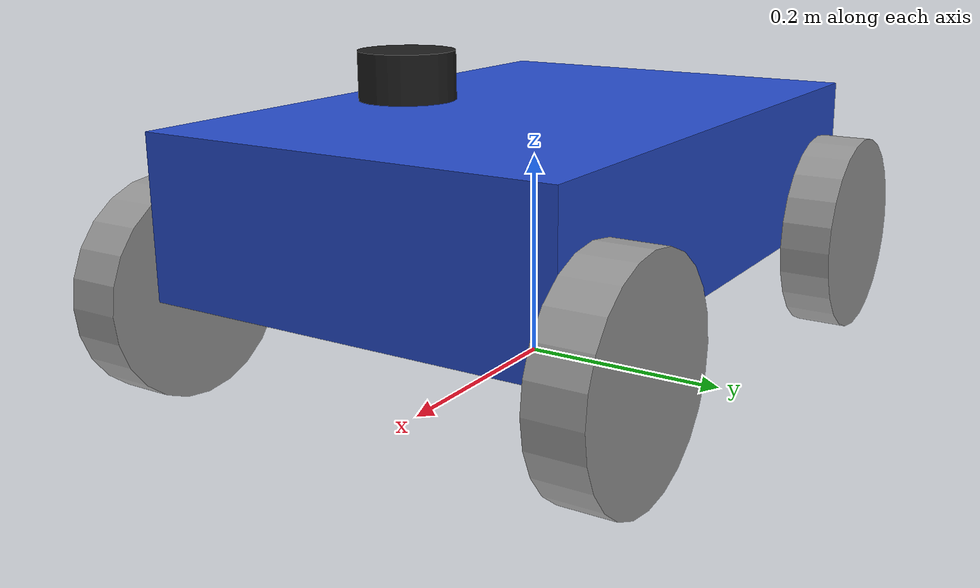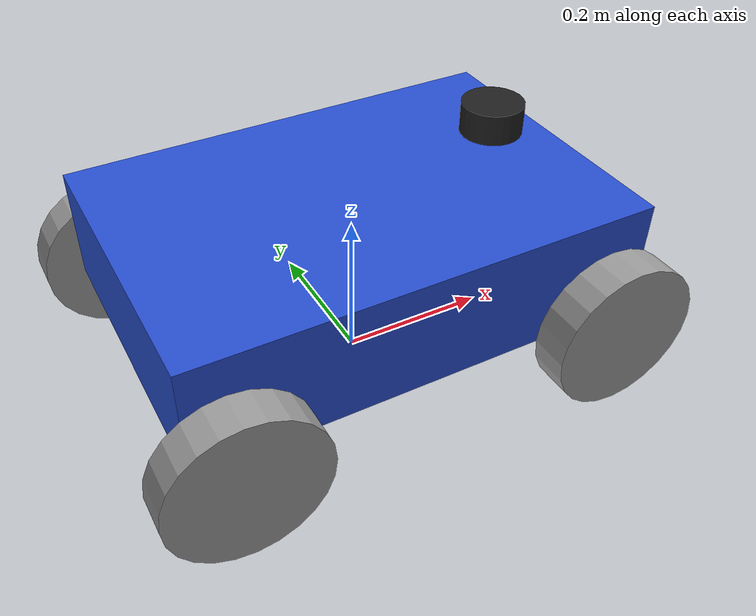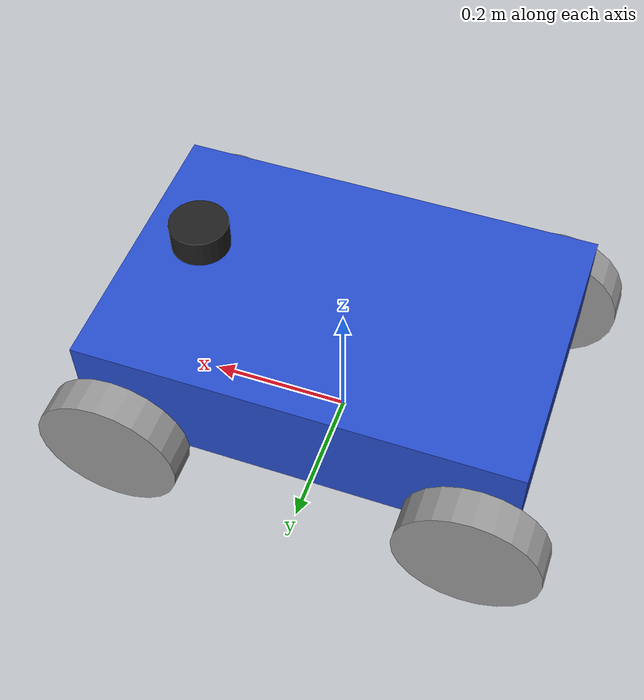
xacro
<?xml version="1.0"?>
<robot xmlns:xacro="http://www.ros.org/wiki/xacro">

    <xacro:property name="base_length" value="0.6" />
    <xacro:property name="base_width" value="0.4" />
    <xacro:property name="base_height" value="0.15" />
    <xacro:property name="wheel_radius" value="0.1" />
    <xacro:property name="wheel_length" value="0.05" />
    <xacro:property name="wheelbase" value="0.5" />
    <xacro:property name="track_width" value="0.4" />
    <xacro:property name="max_steer_angle" value="0.6" />
    <xacro:property name="wheel_separation" value="${track_width + wheel_length}" />
    <xacro:property name="max_wheel_angular_velocity" value="20.0" />

    <!-- Base footprint (ground projection) -->
    <link name="base_footprint" />

    <!-- Chassis -->
    <link name="base_link">
        <visual>
            <geometry>
                <box size="${base_length} ${base_width} ${base_height}" />
            </geometry>
            <origin xyz="0 0 ${base_height / 2.0}" rpy="0 0 0" />
            <material name="blue" />
        </visual>
        <collision>
            <geometry>
                <box size="${base_length} ${base_width - 0.15} ${base_height}" />
            </geometry>
            <origin xyz="0 0 ${base_height / 2.0}" rpy="0 0 0" />
        </collision>
        <xacro:box_inertia m="5.0" l="${2*base_length}" w="${2*base_width}" h="${2*base_height}"
                           xyz="0 0 ${base_height / 2.0}" rpy="0 0 0" />
    </link>

    <joint name="base_joint" type="fixed">
        <parent link="base_footprint" />
        <child link="base_link" />
        <origin xyz="0 0 ${wheel_radius}" rpy="0 0 0"/>
    </joint>

    <!-- ==================== REAR WHEELS (driven) ==================== -->

    <xacro:macro name="rear_wheel" params="prefix y_offset">
        <link name="rear_${prefix}_wheel_link">
            <visual>
                <geometry>
                    <cylinder radius="${wheel_radius}" length="${wheel_length}" />
                </geometry>
                <origin xyz="0 0 0" rpy="${pi / 2.0} 0 0" />
                <material name="grey" />
            </visual>
            <collision>
                <origin xyz="0 0 0" rpy="${pi / 2.0} 0 0" />
                <geometry>
                    <cylinder radius="${wheel_radius}" length="${wheel_length}" />
                </geometry>
            </collision>
            <xacro:cylinder_inertia m="1.0" r="${2*wheel_radius}" h="${2*wheel_length}"
                                    xyz="0 0 0" rpy="${pi / 2.0} 0 0" />
        </link>

        <joint name="rear_${prefix}_wheel_joint" type="continuous">
            <parent link="base_link" />
            <child link="rear_${prefix}_wheel_link" />
            <origin xyz="${-wheelbase / 2.0} ${y_offset} 0" rpy="0 0 0" />
            <axis xyz="0 1 0" />
            <dynamics damping="0.1" friction="0.1" />
        </joint>
    </xacro:macro>

    <xacro:rear_wheel prefix="left" y_offset="${wheel_separation / 2.0}" />
    <xacro:rear_wheel prefix="right" y_offset="${-wheel_separation / 2.0}" />

    <!-- ==================== FRONT WHEELS (steered) ==================== -->

    <xacro:macro name="front_steered_wheel" params="prefix y_offset">
        <!-- Steering link -->
        <link name="front_${prefix}_steering_link">
            <visual>
                <origin xyz="0 0 0" rpy="${pi / 2.0} 0 0" />
                <geometry>
                    <cylinder length="0.001" radius="0.01" />
                </geometry>
            </visual>
            <collision>
                <origin xyz="0 0 0" rpy="${pi / 2.0} 0 0" />
                <geometry>
                    <cylinder length="0.001" radius="0.01" />
                </geometry>
            </collision>
            <inertial>
                <mass value="0.01" />
                <inertia ixx="0.0" ixy="0.0" ixz="0.0" iyy="0.0" iyz="0.0" izz="0.0" />
                <origin xyz="0 0 0" rpy="${pi / 2.0} 0 0" />
            </inertial>
        </link>

        <!-- Steering joint -->
        <joint name="front_${prefix}_steering_joint" type="revolute">
            <parent link="base_link" />
            <child link="front_${prefix}_steering_link" />
            <origin xyz="${wheelbase / 2.0} ${y_offset} 0" rpy="0 0 0" />
            <axis xyz="0 0 1" />
            <limit effort="1.0" lower="${-max_steer_angle}" upper="${max_steer_angle}" velocity="1.57" />
            <dynamics damping="0.1" friction="0.1" />
        </joint>

        <!-- Wheel link -->
        <link name="front_${prefix}_wheel_link">
            <visual>
                <geometry>
                    <cylinder radius="${wheel_radius}" length="${wheel_length}" />
                </geometry>
                <origin xyz="0 0 0" rpy="${pi / 2.0} 0 0" />
                <material name="grey" />
            </visual>
            <collision>
                <origin xyz="0 0 0" rpy="${pi / 2.0} 0 0" />
                <geometry>
                    <cylinder radius="${wheel_radius}" length="${wheel_length}" />
                </geometry>
            </collision>
            <xacro:cylinder_inertia m="1.0" r="${2*wheel_radius}" h="${2*wheel_length}"
                                    xyz="0 0 0" rpy="${pi / 2.0} 0 0" />
        </link>

        <!-- Wheel rotation joint -->
        <joint name="front_${prefix}_wheel_joint" type="continuous">
            <parent link="front_${prefix}_steering_link" />
            <child link="front_${prefix}_wheel_link" />
            <origin xyz="0 0 0" rpy="0 0 0" />
            <axis xyz="0 1 0" />
            <dynamics damping="0.1" friction="0.1" />
        </joint>
    </xacro:macro>

    <xacro:front_steered_wheel prefix="left" y_offset="${wheel_separation / 2.0}" />
    <xacro:front_steered_wheel prefix="right" y_offset="${-wheel_separation / 2.0}" />

    <!-- ==================== LiDAR ==================== -->
    <joint name="lidar_joint" type="fixed">
        <parent link="base_link" />
        <child link="lidar_link" />
        <origin xyz="0.2 0 0.2" rpy="0 0 0" />
    </joint>

    <link name="lidar_link">
        <visual>
            <geometry>
                <cylinder radius="0.04" length="0.04" />
            </geometry>
            <origin xyz="0 0 0" rpy="0 0 0" />
            <material name="black" />
        </visual>
        <collision>
            <geometry>
                <cylinder radius="0.04" length="0.04" />
            </geometry>
        </collision>
        <inertial>
            <mass value="0.1" />
            <inertia ixx="0.0001" iyy="0.0001" izz="0.0001"
                     ixy="0" ixz="0" iyz="0" />
        </inertial>
    </link>

    <!-- ==================== ros2_control ==================== -->
    <ros2_control name="ackermann_control" type="system">
        <hardware>
            <plugin>gazebo_ros2_control/GazeboSystem</plugin>
        </hardware>

        <joint name="front_left_steering_joint">
            <command_interface name="position">
                <param name="min">${-max_steer_angle}</param>
                <param name="max">${max_steer_angle}</param>
            </command_interface>
            <state_interface name="position" />
            <state_interface name="velocity" />
        </joint>

        <joint name="front_right_steering_joint">
            <command_interface name="position">
                <param name="min">${-max_steer_angle}</param>
                <param name="max">${max_steer_angle}</param>
            </command_interface>
            <state_interface name="position" />
            <state_interface name="velocity" />
        </joint>

        <joint name="rear_left_wheel_joint">
            <command_interface name="velocity">
                <param name="min">${-max_wheel_angular_velocity}</param>
                <param name="max">${max_wheel_angular_velocity}</param>
            </command_interface>
            <state_interface name="position" />
            <state_interface name="velocity" />
        </joint>

        <joint name="rear_right_wheel_joint">
            <command_interface name="velocity">
                <param name="min">${-max_wheel_angular_velocity}</param>
                <param name="max">${max_wheel_angular_velocity}</param>
            </command_interface>
            <state_interface name="position" />
            <state_interface name="velocity" />
        </joint>

        <joint name="front_left_wheel_joint">
            <state_interface name="position" />
            <state_interface name="velocity" />
        </joint>

        <joint name="front_right_wheel_joint">
            <state_interface name="position" />
            <state_interface name="velocity" />
        </joint>
    </ros2_control>

</robot>
